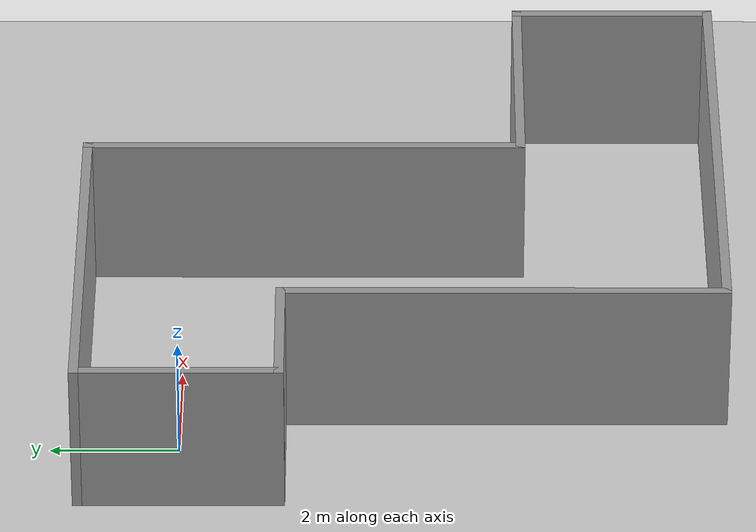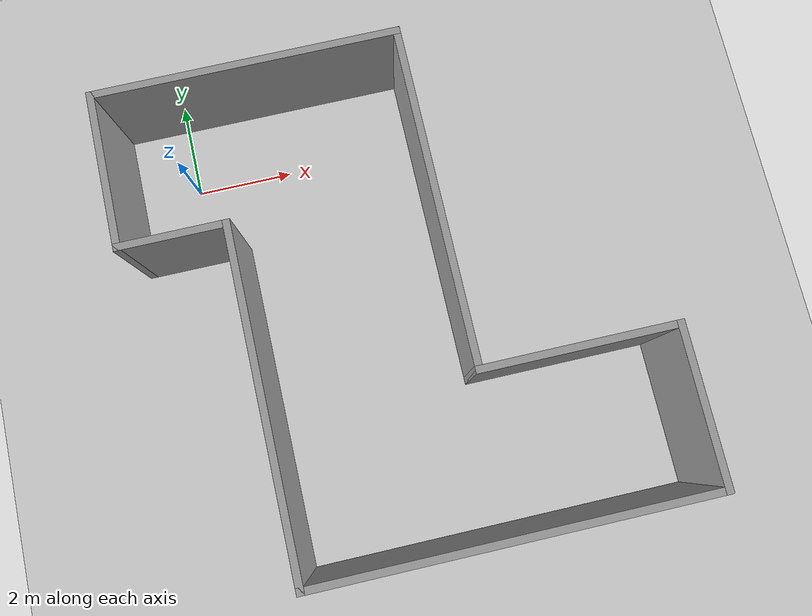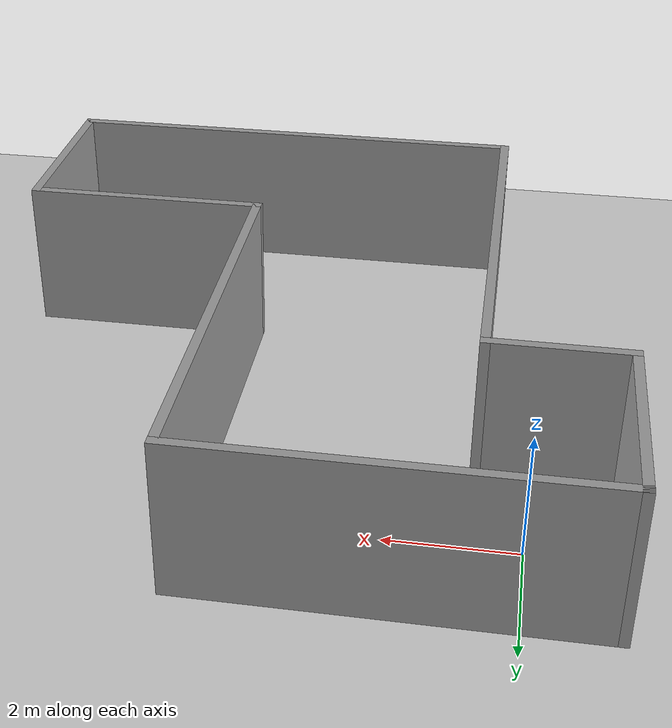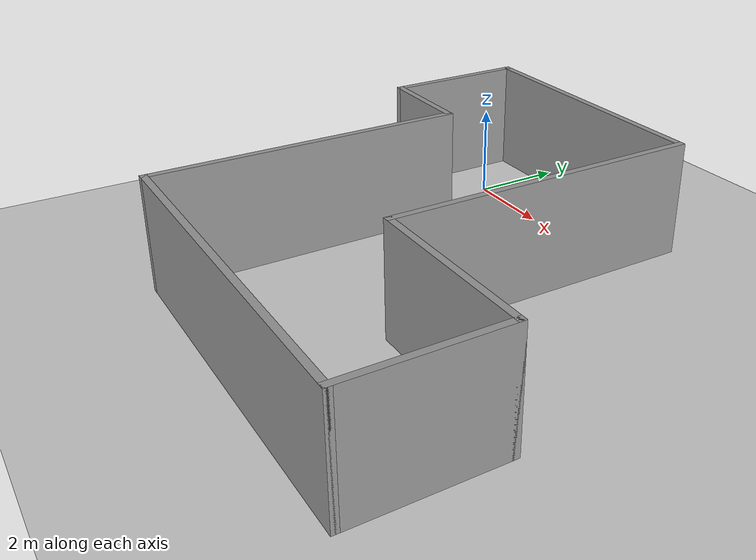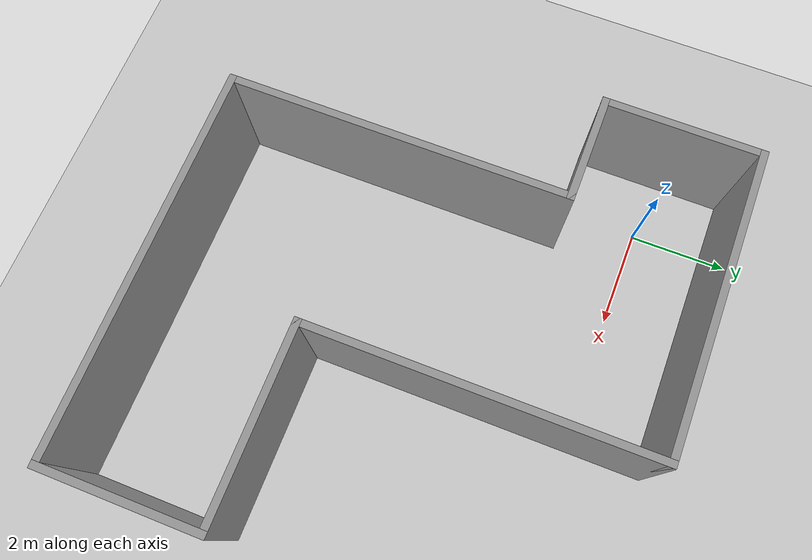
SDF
<?xml version="1.0" ?>
<sdf version="1.4">
  <world name="test_env2_small">
    <include>
      <uri>model://ground_plane</uri>
    </include>
    <include>
      <uri>model://sun</uri>
    </include>
    <include>
      <uri>model://test_env2_small</uri>
      <name>test_environment2_small</name>
      <pose>3.64 -3.44 0 0 0 -1.5707</pose>
    </include>
  </world>
</sdf>

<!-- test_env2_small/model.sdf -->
<sdf version='1.6'>
  <model name='test_env2_small'>
    <pose frame=''>0.150819 -0.029401 0 0 -0 0</pose>
    <link name='Wall_0'>
      <collision name='Wall_0_Collision'>
        <geometry>
          <box>
            <size>7 0.15 2.5</size>
          </box>
        </geometry>
        <pose frame=''>0 0 1.25 0 -0 0</pose>
      </collision>
      <visual name='Wall_0_Visual'>
        <pose frame=''>0 0 1.25 0 -0 0</pose>
        <geometry>
          <box>
            <size>7 0.15 2.5</size>
          </box>
        </geometry>
        <material>
          <script>
            <uri>file://media/materials/scripts/gazebo.material</uri>
            <name>Gazebo/Grey</name>
          </script>
          <ambient>1 1 1 1</ambient>
        </material>
      </visual>
      <pose frame=''>-1.55 1.125 0 0 -0 0</pose>
    </link>
    <link name='Wall_1'>
      <collision name='Wall_1_Collision'>
        <geometry>
          <box>
            <size>4 0.15 2.5</size>
          </box>
        </geometry>
        <pose frame=''>0 0 1.25 0 -0 0</pose>
      </collision>
      <visual name='Wall_1_Visual'>
        <pose frame=''>0 0 1.25 0 -0 0</pose>
        <geometry>
          <box>
            <size>4 0.15 2.5</size>
          </box>
        </geometry>
        <material>
          <script>
            <uri>file://media/materials/scripts/gazebo.material</uri>
            <name>Gazebo/Grey</name>
          </script>
          <ambient>1 1 1 1</ambient>
        </material>
      </visual>
      <pose frame=''>1.875 3.05 0 0 -0 1.5708</pose>
    </link>
    <link name='Wall_2'>
      <collision name='Wall_2_Collision'>
        <geometry>
          <box>
            <size>3.25 0.15 2.5</size>
          </box>
        </geometry>
        <pose frame=''>0 0 1.25 0 -0 0</pose>
      </collision>
      <visual name='Wall_2_Visual'>
        <pose frame=''>0 0 1.25 0 -0 0</pose>
        <geometry>
          <box>
            <size>3.25 0.15 2.5</size>
          </box>
        </geometry>
        <material>
          <script>
            <uri>file://media/materials/scripts/gazebo.material</uri>
            <name>Gazebo/Grey</name>
          </script>
          <ambient>1 1 1 1</ambient>
        </material>
      </visual>
      <pose frame=''>3.425 4.975 0 0 -0 0</pose>
    </link>
    <link name='Wall_3'>
      <collision name='Wall_3_Collision'>
        <geometry>
          <box>
            <size>8 0.15 2.5</size>
          </box>
        </geometry>
        <pose frame=''>0 0 1.25 0 -0 0</pose>
      </collision>
      <visual name='Wall_3_Visual'>
        <pose frame=''>0 0 1.25 0 -0 0</pose>
        <geometry>
          <box>
            <size>8 0.15 2.5</size>
          </box>
        </geometry>
        <material>
          <script>
            <uri>file://media/materials/scripts/gazebo.material</uri>
            <name>Gazebo/Grey</name>
          </script>
          <ambient>1 1 1 1</ambient>
        </material>
      </visual>
      <pose frame=''>4.975 1.05 0 0 0 -1.5708</pose>
    </link>
    <link name='Wall_4'>
      <collision name='Wall_4_Collision'>
        <geometry>
          <box>
            <size>7 0.15 2.5</size>
          </box>
        </geometry>
        <pose frame=''>0 0 1.25 0 -0 0</pose>
      </collision>
      <visual name='Wall_4_Visual'>
        <pose frame=''>0 0 1.25 0 -0 0</pose>
        <geometry>
          <box>
            <size>7 0.15 2.5</size>
          </box>
        </geometry>
        <material>
          <script>
            <uri>file://media/materials/scripts/gazebo.material</uri>
            <name>Gazebo/Grey</name>
          </script>
          <ambient>1 1 1 1</ambient>
        </material>
      </visual>
      <pose frame=''>1.55 -2.875 0 0 -0 3.14159</pose>
    </link>
    <link name='Wall_5'>
      <collision name='Wall_5_Collision'>
        <geometry>
          <box>
            <size>2.25 0.15 2.5</size>
          </box>
        </geometry>
        <pose frame=''>0 0 1.25 0 -0 0</pose>
      </collision>
      <visual name='Wall_5_Visual'>
        <pose frame=''>0 0 1.25 0 -0 0</pose>
        <geometry>
          <box>
            <size>2.25 0.15 2.5</size>
          </box>
        </geometry>
        <material>
          <script>
            <uri>file://media/materials/scripts/gazebo.material</uri>
            <name>Gazebo/Grey</name>
          </script>
          <ambient>1 1 1 1</ambient>
        </material>
      </visual>
      <pose frame=''>-1.875 -3.925 0 0 0 -1.5708</pose>
    </link>
    <link name='Wall_6'>
      <collision name='Wall_6_Collision'>
        <geometry>
          <box>
            <size>3.25 0.15 2.5</size>
          </box>
        </geometry>
        <pose frame=''>0 0 1.25 0 -0 0</pose>
      </collision>
      <visual name='Wall_6_Visual'>
        <pose frame=''>0 0 1.25 0 -0 0</pose>
        <geometry>
          <box>
            <size>3.25 0.15 2.5</size>
          </box>
        </geometry>
        <material>
          <script>
            <uri>file://media/materials/scripts/gazebo.material</uri>
            <name>Gazebo/Grey</name>
          </script>
          <ambient>1 1 1 1</ambient>
        </material>
      </visual>
      <pose frame=''>-3.425 -4.975 0 0 -0 3.14159</pose>
    </link>
    <link name='Wall_7'>
      <collision name='Wall_7_Collision'>
        <geometry>
          <box>
            <size>6.25 0.15 2.5</size>
          </box>
        </geometry>
        <pose frame=''>0 0 1.25 0 -0 0</pose>
      </collision>
      <visual name='Wall_7_Visual'>
        <pose frame=''>0 0 1.25 0 -0 0</pose>
        <geometry>
          <box>
            <size>6.25 0.15 2.5</size>
          </box>
        </geometry>
        <material>
          <script>
            <uri>file://media/materials/scripts/gazebo.material</uri>
            <name>Gazebo/Grey</name>
          </script>
          <ambient>1 1 1 1</ambient>
        </material>
      </visual>
      <pose frame=''>-4.975 -1.925 0 0 -0 1.5708</pose>
    </link>
    <static>1</static>
  </model>
</sdf>
